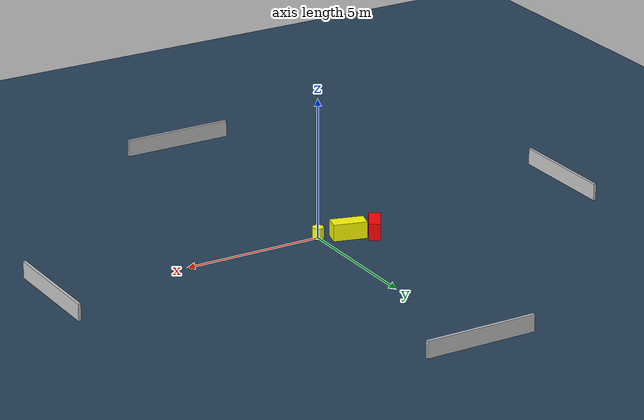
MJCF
<?xml version="1.0" ?>
<mujoco model="generated_environment">
  <option timestep="0.01" integrator="RK4" cone="elliptic"/>
  <default>
    <geom density="1"/>
  </default>
  <asset>
    <texture builtin="gradient" height="3072" name="skybox" rgb1="0.3 0.5 0.7" rgb2="0 0 0" type="skybox" width="512"/>
    <texture builtin="checker" height="300" name="groundplane" rgb1="0.2 0.3 0.4" rgb2="0.1 0.2 0.3" type="2d" width="300"/>
    <material name="groundplane" reflectance="0.2" texrepeat="5 5" texture="groundplane"/>
  </asset>
  <worldbody>
    <light dir="0 0 -1" directional="true" pos="0 0 1.5"/>
    <geom condim="3" friction="0.5 0.005 0.001" material="groundplane" name="floor" pos="0 0 0" size="0 0 0.05" type="plane"/>
    <body name="walls">
      <geom name="wall_1" condim="4" pos="-10.0 0.0 0.3" rgba="0.800000011920929 0.800000011920929 0.800000011920929 1.0" size="0.05 2.0 0.3" type="box"/>
      <geom name="wall_2" condim="4" pos="10.0 0.0 0.3" rgba="0.800000011920929 0.800000011920929 0.800000011920929 1.0" size="0.05 2.0 0.3" type="box"/>
      <geom name="wall_3" condim="4" pos="0.0 -10.0 0.3" rgba="0.800000011920929 0.800000011920929 0.800000011920929 1.0" size="2.0 0.05 0.3" type="box"/>
      <geom name="wall_4" condim="4" pos="0.0 10.0 0.3" rgba="0.800000011920929 0.800000011920929 0.800000011920929 1.0" size="2.0 0.05 0.3" type="box"/>
    </body>
    <body name="robot">
      <joint name="joint_x" type="slide" pos="0 0 0" axis="1 0 0"/>
      <joint name="joint_y" type="slide" pos="0 0 0" axis="0 1 0"/>
      <geom name="robot" type="cylinder" pos="0.0 0.0 0.2" size="0.2 0.2 0.0" mass="5.0" friction="1.0 0.005 0.0001" condim="4" rgba="1.0 1.0 0.0 1.0"/>
    </body>
    <body name="obstacle_1_movable">
      <geom name="obstacle_1_movable" condim="4" pos="-0.9242358564194394 0.45568823290583804 0.3" euler="0 0 74.60163943880211" friction="0.0 0.005 0.001" rgba="1.0 1.0 0.0 1.0" size="0.2730474662900343 0.5936523414427884 0.3" type="box" mass="0.1"/>
      <joint type="free"/>
    </body>
    <body name="obstacle_2_static">
      <geom name="obstacle_2_static" condim="4" pos="-1.7769743270817622 0.7514940037756828 0.3" euler="0 0 329.03561840921105" friction="0.0 0.005 0.001" rgba="1.0 0.0 0.0 1.0" size="0.20412470972257915 0.505853303476596 0.3" type="box"/>
    </body>
  </worldbody>
  <actuator>
    <motor name="actuator_x" joint="joint_x" gear="1" ctrlrange="-1 1"/>
    <motor name="actuator_y" joint="joint_y" gear="1" ctrlrange="-1 1"/>
  </actuator>
</mujoco>
